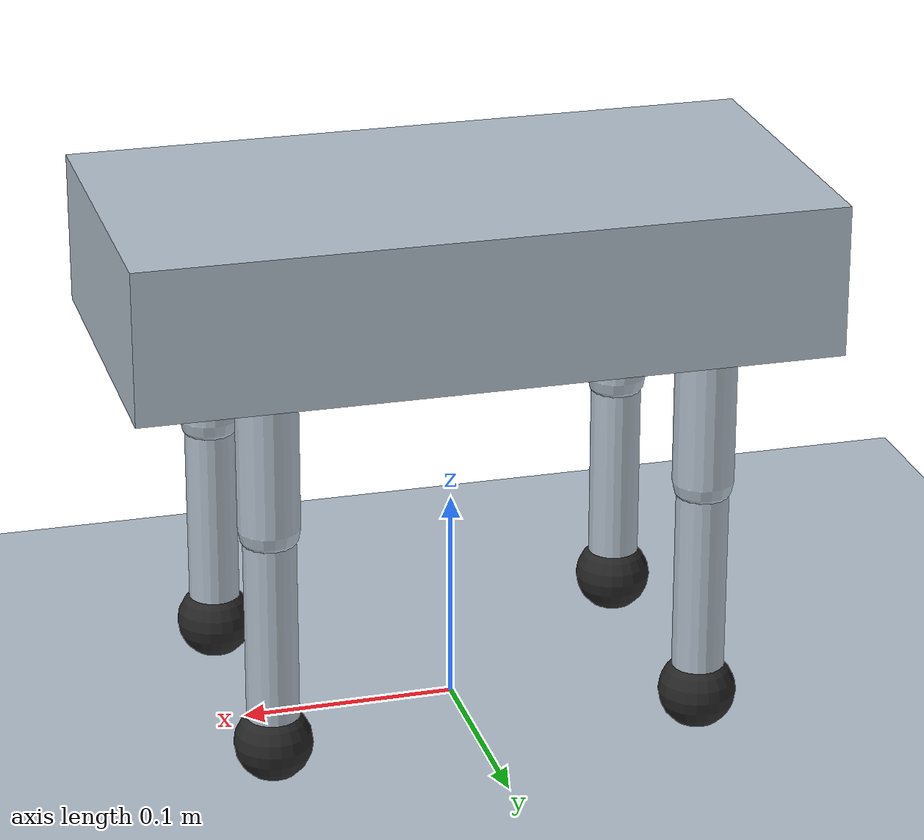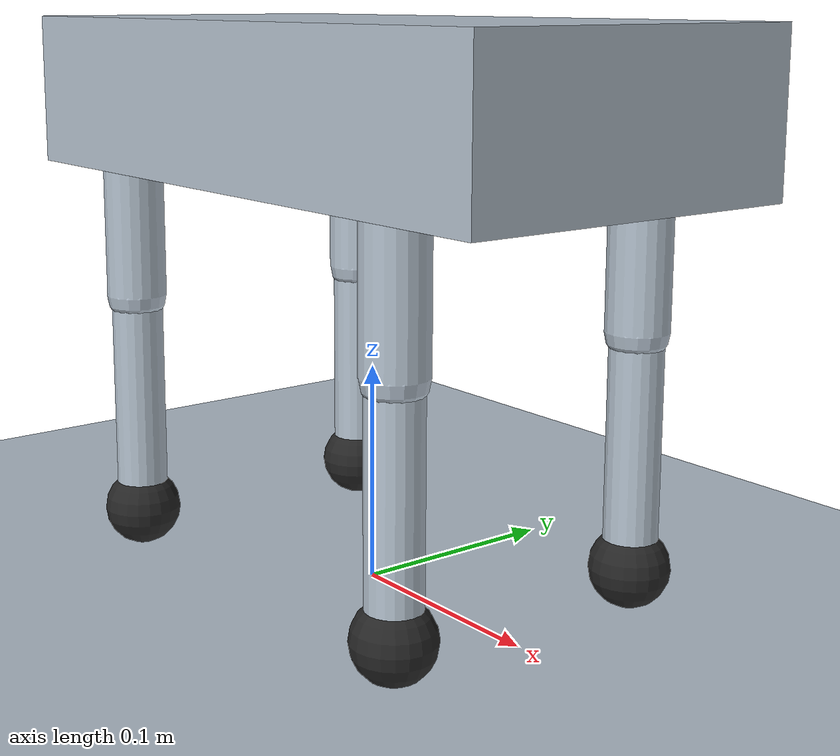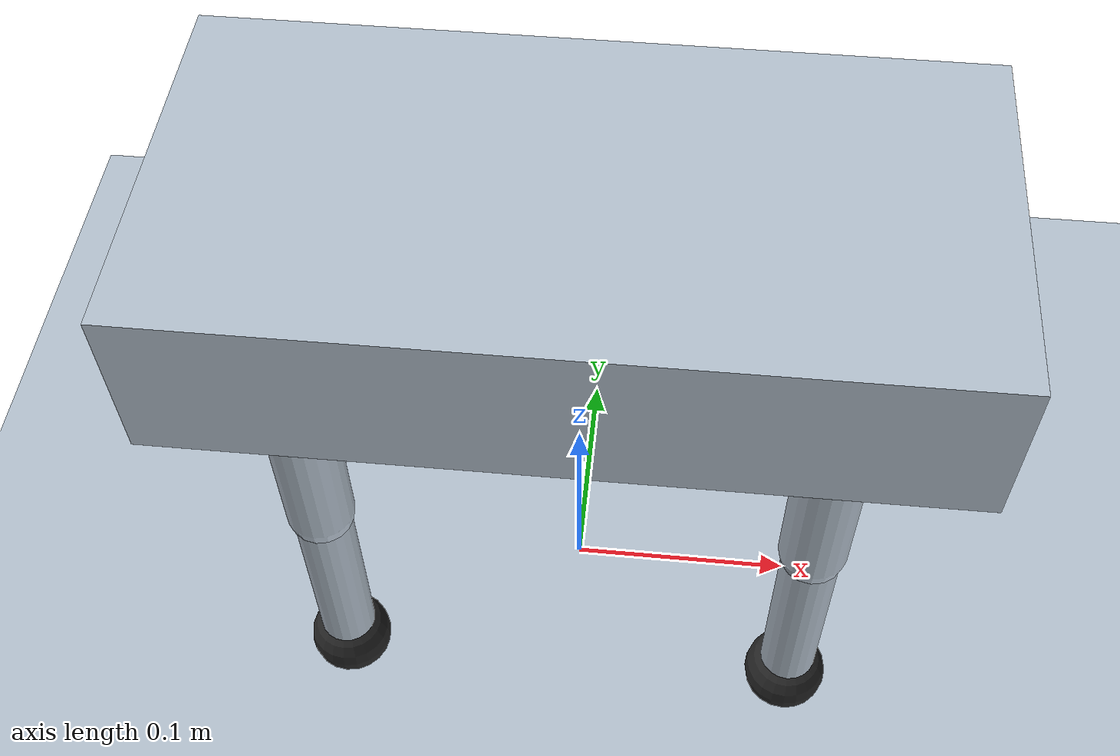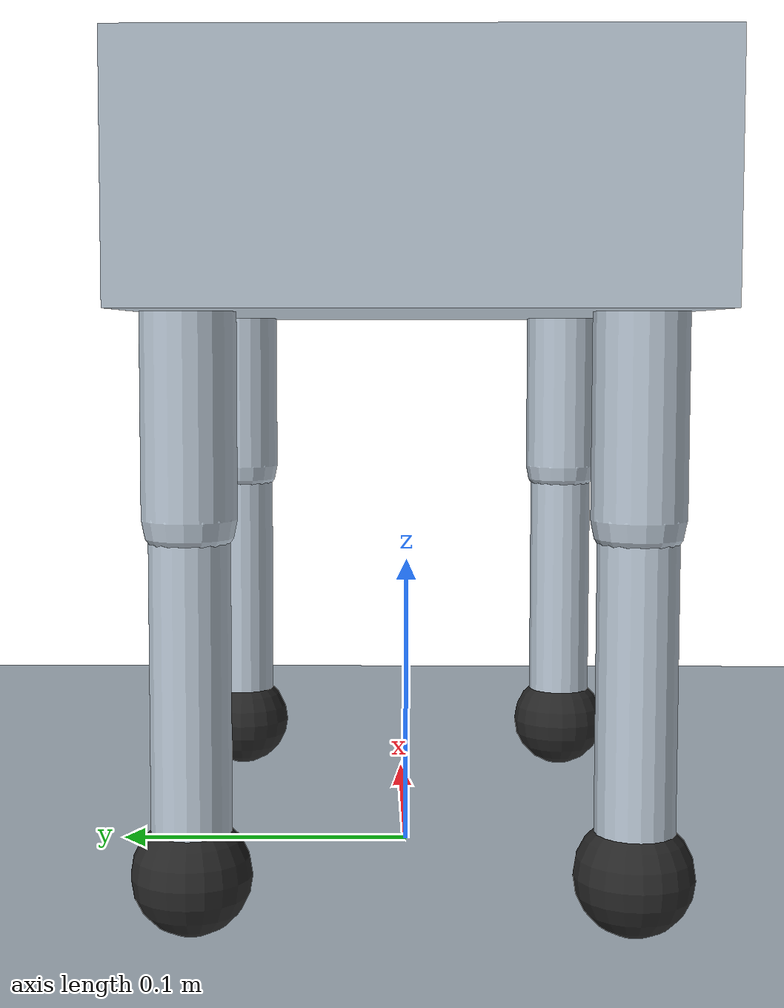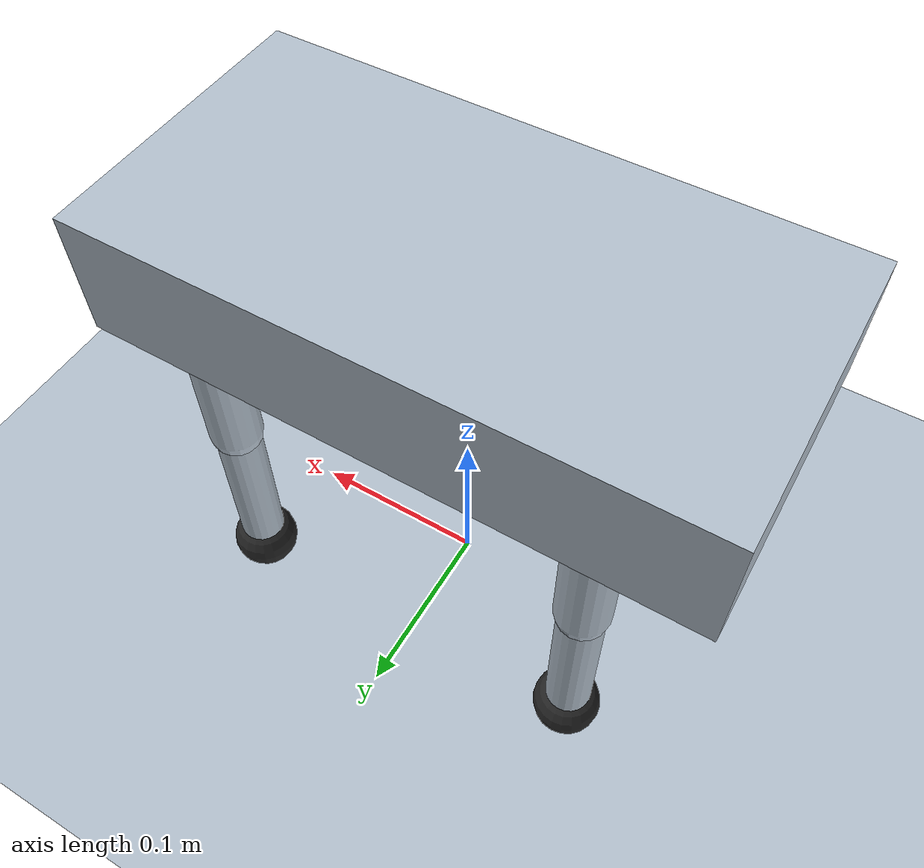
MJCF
<mujoco model="simple_quadruped">
  <compiler angle="radian" coordinate="local"/>

  <option timestep="0.002" gravity="0 0 -9.81" integrator="RK4"/>

  <default>
    <joint damping="0.2" armature="0.01" limited="true"/>
    <geom friction="1.0 0.1 0.01" rgba="0.7 0.75 0.8 1"/>
    <position kp="10" ctrllimited="true" forcelimited="true" forcerange="-3 3"/>
  </default>

  <asset>
    <texture name="grid" type="2d" builtin="checker" width="512" height="512"
             rgb1="0.2 0.25 0.25" rgb2="0.35 0.4 0.4"/>
    <material name="grid" texture="grid" texrepeat="4 4"/>
  </asset>

  <worldbody>
    <light pos="0 0 2" dir="0 0 -1"/>
    <geom name="floor" type="plane" size="5 5 0.05" material="grid"/>

    <body name="torso" pos="0 0 0.22">
      <freejoint name="root"/>
      <geom name="torso_geom" type="box" size="0.16 0.08 0.035" mass="0.45"/>

      <body name="front_left_thigh" pos="0.10 0.065 0">
        <joint name="front_left_hip" type="hinge" axis="0 1 0" range="-0.9 0.9"/>
        <geom type="capsule" fromto="0 0 0 0 0 -0.095" size="0.014" mass="0.035"/>
        <body name="front_left_calf" pos="0 0 -0.095">
          <joint name="front_left_knee" type="hinge" axis="0 1 0" range="-1.4 0.2"/>
          <geom type="capsule" fromto="0 0 0 0 0 -0.095" size="0.012" mass="0.025"/>
          <geom name="front_left_foot" type="sphere" pos="0 0 -0.105" size="0.018" mass="0.015" rgba="0.15 0.15 0.15 1"/>
        </body>
      </body>

      <body name="front_right_thigh" pos="0.10 -0.065 0">
        <joint name="front_right_hip" type="hinge" axis="0 1 0" range="-0.9 0.9"/>
        <geom type="capsule" fromto="0 0 0 0 0 -0.095" size="0.014" mass="0.035"/>
        <body name="front_right_calf" pos="0 0 -0.095">
          <joint name="front_right_knee" type="hinge" axis="0 1 0" range="-1.4 0.2"/>
          <geom type="capsule" fromto="0 0 0 0 0 -0.095" size="0.012" mass="0.025"/>
          <geom name="front_right_foot" type="sphere" pos="0 0 -0.105" size="0.018" mass="0.015" rgba="0.15 0.15 0.15 1"/>
        </body>
      </body>

      <body name="rear_left_thigh" pos="-0.10 0.065 0">
        <joint name="rear_left_hip" type="hinge" axis="0 1 0" range="-0.9 0.9"/>
        <geom type="capsule" fromto="0 0 0 0 0 -0.095" size="0.014" mass="0.035"/>
        <body name="rear_left_calf" pos="0 0 -0.095">
          <joint name="rear_left_knee" type="hinge" axis="0 1 0" range="-1.4 0.2"/>
          <geom type="capsule" fromto="0 0 0 0 0 -0.095" size="0.012" mass="0.025"/>
          <geom name="rear_left_foot" type="sphere" pos="0 0 -0.105" size="0.018" mass="0.015" rgba="0.15 0.15 0.15 1"/>
        </body>
      </body>

      <body name="rear_right_thigh" pos="-0.10 -0.065 0">
        <joint name="rear_right_hip" type="hinge" axis="0 1 0" range="-0.9 0.9"/>
        <geom type="capsule" fromto="0 0 0 0 0 -0.095" size="0.014" mass="0.035"/>
        <body name="rear_right_calf" pos="0 0 -0.095">
          <joint name="rear_right_knee" type="hinge" axis="0 1 0" range="-1.4 0.2"/>
          <geom type="capsule" fromto="0 0 0 0 0 -0.095" size="0.012" mass="0.025"/>
          <geom name="rear_right_foot" type="sphere" pos="0 0 -0.105" size="0.018" mass="0.015" rgba="0.15 0.15 0.15 1"/>
        </body>
      </body>
    </body>
  </worldbody>

  <actuator>
    <position name="front_left_hip_pos" joint="front_left_hip" ctrlrange="-0.8 0.8"/>
    <position name="front_left_knee_pos" joint="front_left_knee" ctrlrange="-1.3 0.1"/>
    <position name="front_right_hip_pos" joint="front_right_hip" ctrlrange="-0.8 0.8"/>
    <position name="front_right_knee_pos" joint="front_right_knee" ctrlrange="-1.3 0.1"/>
    <position name="rear_left_hip_pos" joint="rear_left_hip" ctrlrange="-0.8 0.8"/>
    <position name="rear_left_knee_pos" joint="rear_left_knee" ctrlrange="-1.3 0.1"/>
    <position name="rear_right_hip_pos" joint="rear_right_hip" ctrlrange="-0.8 0.8"/>
    <position name="rear_right_knee_pos" joint="rear_right_knee" ctrlrange="-1.3 0.1"/>
  </actuator>
</mujoco>
